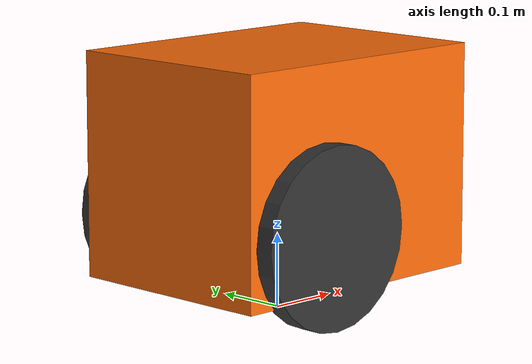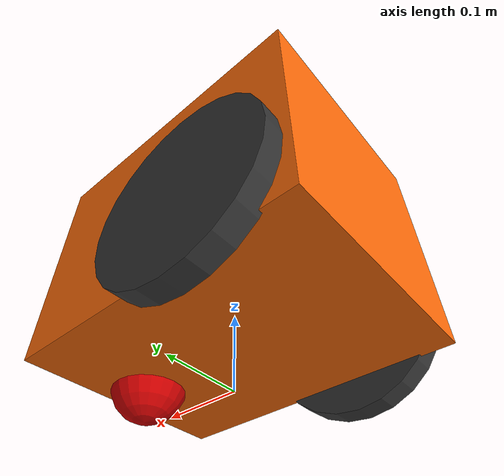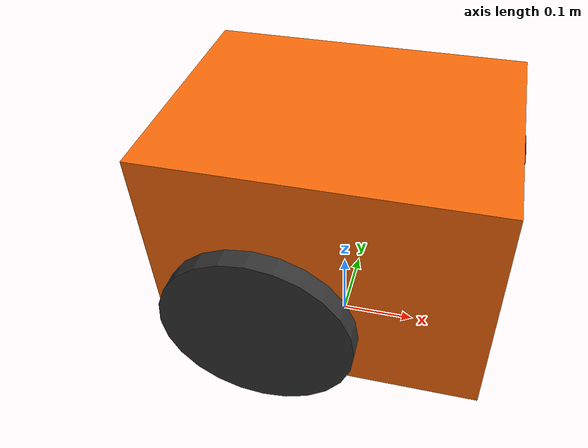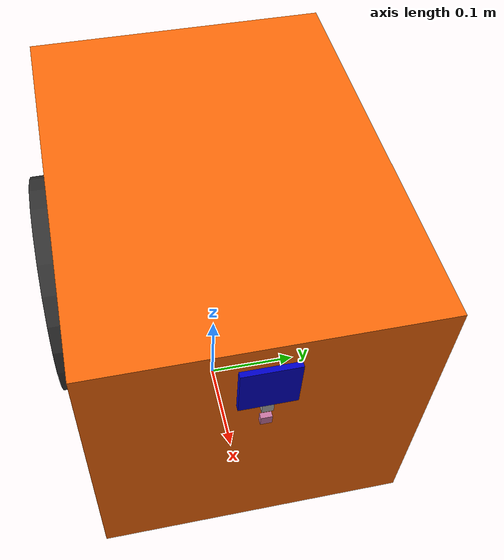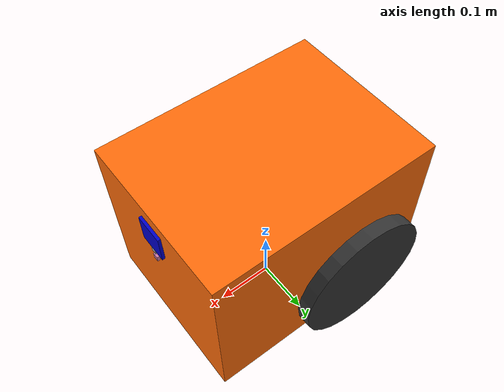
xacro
<?xml version="1.0"?>
<robot name="krotic" xmlns:xacro="http://www.ros.org/wiki/xacro">

	<!-- Robot's Properties that define the dimensions of each component -->
	<xacro:property name="PI" value="3.1415926535897931"/>
	<!-- Chassis dimensions -->
	<xacro:property name="chassisHeight" value="0.3"/>
	<xacro:property name="chassisLength" value="0.4"/>
	<xacro:property name="chassisWidth" value="0.3"/>
	<xacro:property name="chassisMass" value="10"/>
	<!-- Caster wheel dimensions -->
	<xacro:property name="casterRadius" value="0.05"/>
	<xacro:property name="casterMass" value="1"/>
	<!-- Wheels dimensions -->
	<xacro:property name="wheelWidth" value="0.03"/>
	<xacro:property name="wheelRadius" value="0.12"/>
	<xacro:property name="wheelPos" value="0.2"/>
	<xacro:property name="wheelMass" value="1"/>
	<!-- Camera dimensions -->
	<xacro:property name="cameraSize" value="0.05"/>
	<xacro:property name="cameraMass" value="0.1"/>
	<!-- Include the other files that describe functions, material and macros -->
	<xacro:include filename="$(find krotic_description)/urdf/krotic.gazebo" />
	<xacro:include filename="$(find krotic_description)/urdf/materials.xacro" />
	<xacro:include filename="$(find krotic_description)/urdf/macros.xacro" />

	<!-- Definition of the robot's base and is the parent link -->
	<link name="base_footprint">
	    <visual>
	    	<origin rpy="0 0 0" xyz="0 0 0"/>
		    <geometry>
		    	<box size="0.001 0.001 0.001"/>
		    </geometry>
	    </visual>
	</link>
	<!-- Definition of the chassis with the correct dimensions and positions -->
	<link name='base_link'>
		<collision>
			<origin xyz="0 0 0" rpy="0 0 0"/>
			<geometry>
				<box size="${chassisLength} ${chassisWidth} ${chassisHeight}"/>
			</geometry>
		</collision>
		<visual>
			<origin xyz="0 0 0" rpy="0 0 0"/>
			<geometry>
				<box size="${chassisLength} ${chassisWidth} ${chassisHeight}"/>
			</geometry>
			<material name="orange"/>
		</visual>
		<inertial>
			<origin xyz="0 0 0" rpy="0 0 0"/>
			<mass value="${chassisMass}"/>
			<box_inertia m="${chassisMass}" x="${chassisLength}" y="${chassisWidth}" z="${chassisHeight}"/>
		</inertial>
	</link>
	<!-- Create a joint between base link (chassis) and the footprint base -->
	<joint name="base_footprint_joint" type="fixed">
    	<origin rpy="0 0 0" xyz="0 0 0.2"/>
    	<parent link="base_footprint"/>
    	<child link="base_link"/>
  	</joint>
  	<!-- Definition of the caster wheel with their dimensions and position -->
	<link name="caster_wheel">
		<collision>
			<origin xyz="0 0 -0.14" rpy="0 0 0"/>
			<geometry>
				<sphere radius="${casterRadius}"/>
			</geometry>
		</collision>

		<visual>
			<origin xyz="0 0 -0.14" rpy="0 0 0"/>
			<geometry>
				<sphere radius="${casterRadius}"/>
			</geometry>
			<material name="red"/>
		</visual>

		<inertial>
			<origin xyz="0 0 0"/>
			<mass value="${casterMass}"/>
			<sphere_inertia m="${casterMass}" r="${casterRadius}"/>
		</inertial>
	</link>
	<!-- Create a joint fixed to the base of the chassis -->
	<joint name="base_to_caster" type="fixed">
		<parent link="base_link"/>
    	<child link="caster_wheel"/>
    	<origin rpy="0 0 0" xyz="0.15 0 0" />
	</joint>
	<!-- Call the macros for create both wheels of the robot -->
	<wheel lr="left" tY="1"/>
	<wheel lr="right" tY="-1"/>
	<!-- Adding a camera, defining the dimensions and the position on the robot chassis -->
	<link name="camera">
		<collision>
			<origin xyz="0 0 0" rpy="0 0 0"/>
			<geometry>
				<box size="${cameraSize} ${cameraSize} ${cameraSize}"/>
			</geometry>
		</collision>

		<visual>
			<origin xyz="0 0 0" rpy="0 0 0"/>
			<geometry>
				<box size="${cameraSize} ${cameraSize} ${cameraSize}"/>
			</geometry>
			<material name="blue"/>
		</visual>

		<inertial>
			<mass value="${cameraMass}" />
			<origin xyz="0 0 0" rpy="0 0 0"/>
			<box_inertia m="${cameraMass}" x="${cameraSize}" y="${cameraSize}" z="${cameraSize}" />
		</inertial>
	</link>
	<!-- Create the joint between camera and base chassis -->
	<joint name="camera_fixed" type="fixed">
		<origin xyz="0.18 0 0.1" rpy="0 0 0"/>
		<parent link="base_link"/>
		<child link="camera"/>
	</joint>
	<!-- Definition of the sonar sensor with their dimensions and position -->
	<link name="base_sonar">
		<collision>
			<origin xyz="0 0 0" rpy="0 0 0"/>
			<geometry>
				<box size="0.01 0.01 0.01"/>
			</geometry>
		</collision>

		<visual>
			<origin xyz="0 0 0" rpy="0 0 0"/>
			<geometry>
				<box size="0.01 0.01 0.01"/>
			</geometry>
		</visual>

		<inertial>
			<mass value="1e-5"/>
			<origin xyz="0 0 0" rpy="0 0 0"/>
			<inertia ixx="1e-6" ixy="0" ixz="0" iyy="1e-6" iyz="0" izz="1e-6"/>
		</inertial>
	</link>
	<!-- Create a joint between the sensor and the chassis of the robot -->
	<joint name="sonar_joint" type="fixed">
		<axis xyz="0 1 0" />
		<origin rpy="0 0 0" xyz="0.2 0 0.05"/>
		<parent link="base_link"/>
		<child link="base_sonar"/>
	</joint>
	<!-- Light Sensor definition -->
	<link name="light_sensor">
		<collision>
			<origin xyz="0 0 0" rpy="0 0 0"/>
			<geometry>
				<box size="0.01 0.01 0.01"/>
			</geometry>
		</collision>

		<visual>
			<origin xyz="0 0 0" rpy="0 0 0"/>
			<geometry>
				<box size="0.01 0.01 0.01"/>
			</geometry>
		</visual>

		<inertial>
			<mass value="1e-5"/>
			<origin xyz="0 0 0" rpy="0 0 0"/>
			<inertia ixx="1e-6" ixy="0" ixz="0" iyy="1e-6" iyz="0" izz="1e-6"/>
		</inertial>
	</link>
	<!-- Create a joint between the sensor and the chassis of the robot -->
	<joint name="light_sensor_joint" type="fixed">
		<axis xyz="0 1 0" />
		<origin rpy="0 0 0" xyz="0.2 0 0.07"/>
		<parent link="base_link"/>
		<child link="light_sensor"/>
	</joint>
	<!-- End of the robot definition -->
</robot>

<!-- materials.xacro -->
<robot name="krotic" xmlns:xacro="http://www.ros.org/wiki/xacro">

	<material name="black">
	  <color rgba="0.0 0.0 0.0 1.0"/>
	</material>

	<material name="blue">
	  <color rgba="0.0 0.0 0.8 1.0"/>
	</material>

	<material name="green">
	  <color rgba="0.0 0.8 0.0 1.0"/>
	</material>

	<material name="grey">
	  <color rgba="0.2 0.2 0.2 1.0"/>
	</material>

	<material name="orange">
	  <color rgba="${255/255} ${108/255} ${10/255} 1.0"/>
	</material>

	<material name="brown">
	  <color rgba="${222/255} ${207/255} ${195/255} 1.0"/>
	</material>

	<material name="red">
	  <color rgba="0.8 0.0 0.0 1.0"/>
	</material>

	<material name="white">
	  <color rgba="1.0 1.0 1.0 1.0"/>
	</material>

</robot>

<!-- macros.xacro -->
<robot name="krotic" xmlns:xacro="http://www.ros.org/wiki/xacro">

  <xacro:macro name="cylinder_inertia" params="m r h">
    <inertia  ixx="${m*(3*r*r+h*h)/12}" ixy = "0" ixz = "0"
      iyy="${m*(3*r*r+h*h)/12}" iyz = "0"
      izz="${m*r*r/2}"
    />
  </xacro:macro>

  <xacro:macro name="box_inertia" params="m x y z">
    <inertia  ixx="${m*(y*y+z*z)/12}" ixy = "0" ixz = "0"
      iyy="${m*(x*x+z*z)/12}" iyz = "0"
      izz="${m*(x*x+y*y)/12}"
    />
  </xacro:macro>

  <xacro:macro name="sphere_inertia" params="m r">
    <inertia  ixx="${2*m*r*r/5}" ixy = "0" ixz = "0"
      iyy="${2*m*r*r/5}" iyz = "0"
      izz="${2*m*r*r/5}"
    />
  </xacro:macro>

  <xacro:macro name="wheel" params="lr tY">

  <link name="${lr}_wheel">
    <collision>
      <origin xyz="0 0 0" rpy="${PI/2} 0 0" />
      <geometry>
        <cylinder length="${wheelWidth}" radius="${wheelRadius}"/>
      </geometry>
    </collision>

    <visual>
      <origin xyz="0 0 0" rpy="${PI/2} 0 0" />
      <geometry>
        <cylinder length="${wheelWidth}" radius="${wheelRadius}"/>
      </geometry>
      <material name="grey"/>
    </visual>

    <inertial>
      <mass value="${wheelMass}"/>
      <cylinder_inertia m="${wheelMass}" r="${wheelRadius}" h="${wheelWidth}"/>
    </inertial>
  </link>

  <gazebo reference="${lr}_wheel">
    <mu1 value="1.0"/>
    <mu2 value="1.0"/>
    <kp value="10000000.0"/>
    <kd value="1.0"/>
    <fdir1 value="1 0 0"/>
    <material>Gazebo/White</material>
    <turnGravityOff>false</turnGravityOff>
  </gazebo>

  <joint name="${lr}_wheel_hinge" type="continuous">
    <parent link="base_link"/>
    <child link="${lr}_wheel"/>
    <origin xyz="-0.07 ${tY*0.16} -0.07" rpy="0 0 0" />
    <axis xyz="0 1 0" rpy="0 0 0" />
    <limit effort="100" velocity="100"/>
    <joint_properties damping="0.0" friction="0.0"/>
  </joint>

  <transmission name="${lr}_trans">
    <type>transmission_interface/SimpleTransmission</type>
    <joint name="${lr}_wheel_hinge">
      <hardwareInterface>hardware_interface/EffortJointInterface</hardwareInterface>
    </joint>
    <actuator name="${lr}Motor">
      <hardwareInterface>EffortJointInterface</hardwareInterface>
      <mechanicalReduction>1</mechanicalReduction>
    </actuator>
  </transmission>

  </xacro:macro>
</robot>
